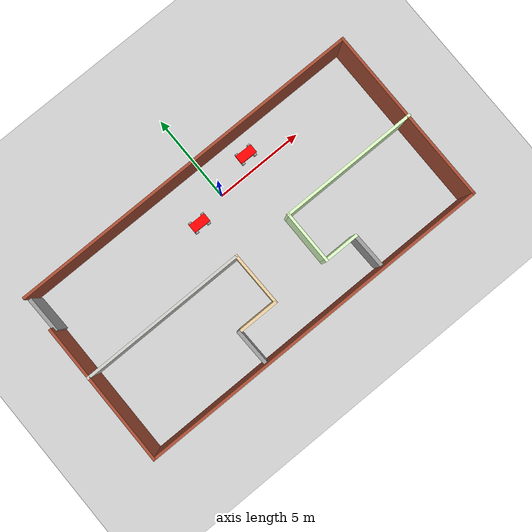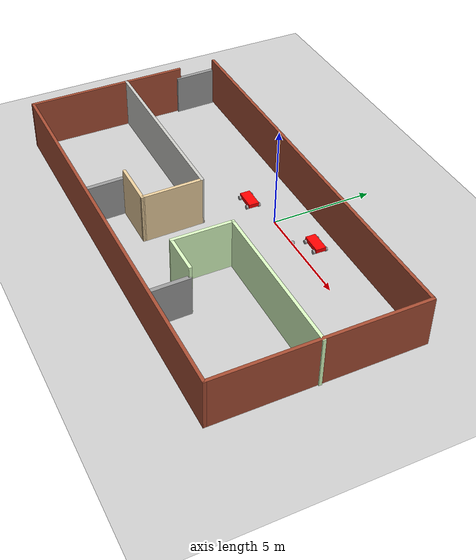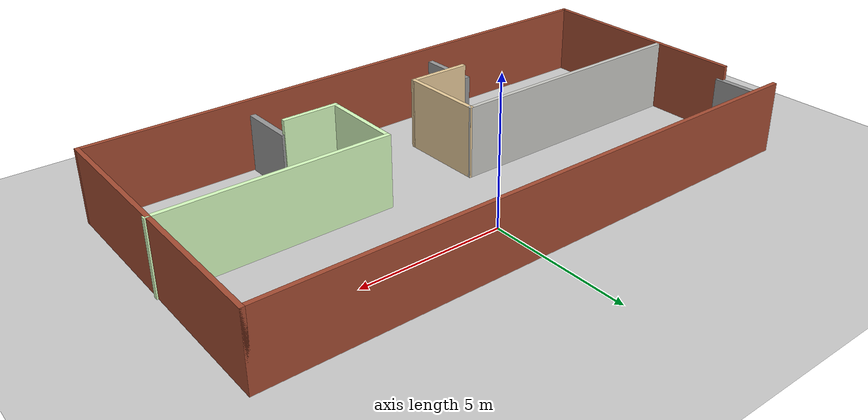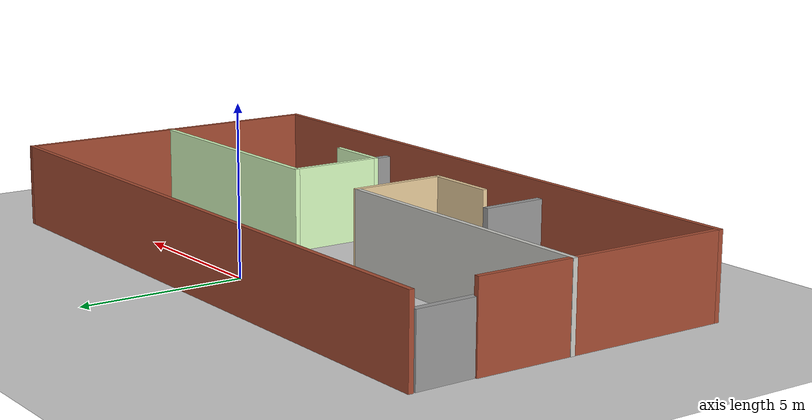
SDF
<sdf version="1.7">
 <world name="default">
  <light name="sun" type="directional">
   <pose>0 0 10 0 -0 0</pose>
   <diffuse>0.8 0.8 0.8 1</diffuse>
   <specular>0.2 0.2 0.2 1</specular>
   <attenuation>
    <range>1000</range>
    <constant>0.9</constant>
    <linear>0.01</linear>
    <quadratic>0.001</quadratic>
   </attenuation>
   <direction>-0.5 0.1 -0.9</direction>
   <spot><inner_angle>0</inner_angle><outer_angle>0</outer_angle><falloff>0</falloff></spot>
  </light>
  <model name="ground_plane">
   <static>1</static>
   <link name="ground_plane::link">
    <collision name="collision">
     <geometry><plane><normal>0 0 1</normal><size>100 100</size></plane></geometry>
     <surface><friction><ode><mu>100</mu><mu2>50</mu2></ode></friction></surface>
    </collision>
    <visual name="visual">
     <cast_shadows>0</cast_shadows>
     <geometry><plane><normal>0 0 1</normal><size>100 100</size></plane></geometry>
     <material>
      <script><uri>file://media/materials/scripts/gazebo.material</uri><name>Gazebo/Grey</name></script>
     </material>
    </visual>
   </link>
  </model>
  <gravity>0 0 -9.8</gravity>
  <magnetic_field>6e-06 2.3e-05 -4.2e-05</magnetic_field>
  <atmosphere type="adiabatic"/>
  <physics name="default_physics" default="0" type="ode">
   <max_step_size>0.001</max_step_size>
   <real_time_factor>1</real_time_factor>
   <real_time_update_rate>1000</real_time_update_rate>
  </physics>
  <scene><ambient>0.4 0.4 0.4 1</ambient><background>0.7 0.7 0.7 1</background><shadows>1</shadows></scene>
  <spherical_coordinates>
   <surface_model>EARTH_WGS84</surface_model>
   <latitude_deg>0</latitude_deg>
   <longitude_deg>0</longitude_deg>
   <elevation>0</elevation>
   <heading_deg>0</heading_deg>
  </spherical_coordinates>
  <model name="robot_space">
   <pose>-0.5915 -3.028 0 0 -0 0</pose>
   <link name="Door_3">
    <collision name="Door_3_Collision">
     <geometry><box><size>2.05653 0.2 2</size></box></geometry>
     <pose>0 0 1 0 -0 0</pose>
    </collision>
    <visual name="Door_3_Visual">
     <pose>0 0 1 0 -0 0</pose>
     <geometry><box><size>2.05653 0.2 2</size></box></geometry>
     <material>
      <script><uri>file://media/materials/scripts/gazebo.material</uri><name>Gazebo/Grey</name></script>
     </material>
    </visual>
    <pose>-3.06434 -3.84105 0 0 0 -1.54642</pose>
   </link>
   <link name="Door_4">
    <collision name="Door_4_Collision">
     <geometry><box><size>2.01581 0.2 2</size></box></geometry>
     <pose>0 0 1 0 -0 0</pose>
    </collision>
    <visual name="Door_4_Visual">
     <pose>0 0 1 0 -0 0</pose>
     <geometry><box><size>2.01581 0.2 2</size></box></geometry>
     <material>
      <script><uri>file://media/materials/scripts/gazebo.material</uri><name>Gazebo/Grey</name></script>
     </material>
    </visual>
    <pose>-9.88584 3.78209 0 0 -0 1.59102</pose>
   </link>
   <link name="Door_5">
    <collision name="Door_5_Collision">
     <geometry><box><size>1.94971 0.2 2</size></box></geometry>
     <pose>0 0 1 0 -0 0</pose>
    </collision>
    <visual name="Door_5_Visual">
     <pose>0 0 1 0 -0 0</pose>
     <geometry><box><size>1.94971 0.2 2</size></box></geometry>
     <material>
      <script><uri>file://media/materials/scripts/gazebo.material</uri><name>Gazebo/Grey</name></script>
     </material>
    </visual>
    <pose>4.28496 -3.82425 0 0 -0 1.59278</pose>
   </link>
   <link name="Wall_11">
    <collision name="Wall_11_Collision">
     <geometry><box><size>20 0.15 2.5</size></box></geometry>
     <pose>0 0 1.25 0 -0 0</pose>
    </collision>
    <visual name="Wall_11_Visual">
     <pose>0 0 1.25 0 -0 0</pose>
     <geometry><box><size>20 0.15 2.5</size></box></geometry>
     <material>
      <script><uri>file://media/materials/scripts/gazebo.material</uri><name>Gazebo/Bricks</name></script>
      <ambient>1 1 1 1</ambient>
     </material>
     <meta><layer>0</layer></meta>
    </visual>
    <pose>-0.022053 4.925 0 0 -0 0</pose>
   </link>
   <link name="Wall_12">
    <collision name="Wall_12_Collision">
     <geometry><box><size>10 0.15 2.5</size></box></geometry>
     <pose>0 0 1.25 0 -0 0</pose>
    </collision>
    <visual name="Wall_12_Visual">
     <pose>0 0 1.25 0 -0 0</pose>
     <geometry><box><size>10 0.15 2.5</size></box></geometry>
     <material>
      <script><uri>file://media/materials/scripts/gazebo.material</uri><name>Gazebo/Bricks</name></script>
      <ambient>1 1 1 1</ambient>
     </material>
     <meta><layer>0</layer></meta>
    </visual>
    <pose>9.90295 0 0 0 0 -1.5708</pose>
   </link>
   <link name="Wall_13">
    <collision name="Wall_13_Collision">
     <geometry><box><size>20 0.15 2.5</size></box></geometry>
     <pose>0 0 1.25 0 -0 0</pose>
    </collision>
    <visual name="Wall_13_Visual">
     <pose>0 0 1.25 0 -0 0</pose>
     <geometry><box><size>20 0.15 2.5</size></box></geometry>
     <material>
      <script><uri>file://media/materials/scripts/gazebo.material</uri><name>Gazebo/Bricks</name></script>
      <ambient>1 1 1 1</ambient>
     </material>
     <meta><layer>0</layer></meta>
    </visual>
    <pose>-0.022053 -4.925 0 0 -0 3.14159</pose>
   </link>
   <link name="Wall_14">
    <collision name="Wall_14_Collision">
     <geometry><box><size>8 0.15 2.5</size></box></geometry>
     <pose>0 0 1.25 0 -0 0</pose>
    </collision>
    <visual name="Wall_14_Visual">
     <pose>0 0 1.25 0 -0 0</pose>
     <geometry><box><size>8 0.15 2.5</size></box></geometry>
     <material>
      <script><uri>file://media/materials/scripts/gazebo.material</uri><name>Gazebo/Bricks</name></script>
      <ambient>1 1 1 1</ambient>
     </material>
     <meta><layer>0</layer></meta>
    </visual>
    <pose>-9.94705 -1 0 0 -0 1.5708</pose>
   </link>
   <link name="Wall_20">
    <collision name="Wall_20_Collision">
     <geometry><box><size>9.25 0.15 2.5</size></box></geometry>
     <pose>0 0 1.25 0 -0 0</pose>
    </collision>
    <visual name="Wall_20_Visual">
     <pose>0 0 1.25 0 -0 0</pose>
     <geometry><box><size>9.25 0.15 2.5</size></box></geometry>
     <material>
      <script><uri>file://media/materials/scripts/gazebo.material</uri><name>Gazebo/CeilingTiled</name></script>
      <ambient>0.921569 0.807843 0.615686 1</ambient>
     </material>
     <meta><layer>0</layer></meta>
    </visual>
    <pose>-5.4065 0.017998 0 0 -0 0</pose>
   </link>
   <link name="Wall_21">
    <collision name="Wall_21_Collision">
     <geometry><box><size>3.04738 0.15 2.5</size></box></geometry>
     <pose>0 0 1.25 0 -0 0</pose>
    </collision>
    <visual name="Wall_21_Visual">
     <pose>0 0 1.25 0 -0 0</pose>
     <geometry><box><size>3.04738 0.15 2.5</size></box></geometry>
     <material>
      <script><uri>file://media/materials/scripts/gazebo.material</uri><name>Gazebo/Grey</name></script>
      <ambient>0.921569 0.807843 0.615686 1</ambient>
     </material>
     <meta><layer>0</layer></meta>
    </visual>
    <pose>-0.833 -1.4305 0 0 0 -1.55457</pose>
   </link>
   <link name="Wall_22">
    <collision name="Wall_22_Collision">
     <geometry><box><size>2.24956 0.15 2.5</size></box></geometry>
     <pose>0 0 1.25 0 -0 0</pose>
    </collision>
    <visual name="Wall_22_Visual">
     <pose>0 0 1.25 0 -0 0</pose>
     <geometry><box><size>2.24956 0.15 2.5</size></box></geometry>
     <material>
      <script><uri>file://media/materials/scripts/gazebo.material</uri><name>Gazebo/Grey</name></script>
      <ambient>0.921569 0.807843 0.615686 1</ambient>
     </material>
     <meta><layer>0</layer></meta>
    </visual>
    <pose>-1.8595 -2.8785 0 0 -0 3.14112</pose>
   </link>
   <link name="Wall_25">
    <collision name="Wall_25_Collision">
     <geometry><box><size>7.75 0.15 2.5</size></box></geometry>
     <pose>0 0 1.25 0 -0 0</pose>
    </collision>
    <visual name="Wall_25_Visual">
     <pose>0 0 1.25 0 -0 0</pose>
     <geometry><box><size>7.75 0.15 2.5</size></box></geometry>
     <material>
      <script><uri>file://media/materials/scripts/gazebo.material</uri><name>Gazebo/Grey</name></script>
      <ambient>0.854902 1 0.760784 1</ambient>
     </material>
     <meta><layer>0</layer></meta>
    </visual>
    <pose>6.1565 -0.028002 0 0 -0 3.14159</pose>
   </link>
   <link name="Wall_26">
    <collision name="Wall_26_Collision">
     <geometry><box><size>3 0.15 2.5</size></box></geometry>
     <pose>0 0 1.25 0 -0 0</pose>
    </collision>
    <visual name="Wall_26_Visual">
     <pose>0 0 1.25 0 -0 0</pose>
     <geometry><box><size>3 0.15 2.5</size></box></geometry>
     <material>
      <script><uri>file://media/materials/scripts/gazebo.material</uri><name>Gazebo/Grey</name></script>
      <ambient>0.854902 1 0.760784 1</ambient>
     </material>
     <meta><layer>0</layer></meta>
    </visual>
    <pose>2.3565 -1.453 0 0 0 -1.5708</pose>
   </link>
   <link name="Wall_27">
    <collision name="Wall_27_Collision">
     <geometry><box><size>2 0.15 2.5</size></box></geometry>
     <pose>0 0 1.25 0 -0 0</pose>
    </collision>
    <visual name="Wall_27_Visual">
     <pose>0 0 1.25 0 -0 0</pose>
     <geometry><box><size>2 0.15 2.5</size></box></geometry>
     <material>
      <script><uri>file://media/materials/scripts/gazebo.material</uri><name>Gazebo/Grey</name></script>
      <ambient>0.854902 1 0.760784 1</ambient>
     </material>
     <meta><layer>0</layer></meta>
    </visual>
    <pose>3.28134 -2.87817 0 0 0 -0.000181</pose>
   </link>
   <static>1</static>
  </model>
  <model name="robot_1">
   <link name="link_0">
    <pose>-3 10 0.2 0 -0 0</pose>
    <inertial>
     <mass>1</mass>
     <inertia>
      <ixx>0.166667</ixx>
      <ixy>0</ixy>
      <ixz>0</ixz>
      <iyy>0.166667</iyy>
      <iyz>0</iyz>
      <izz>0.166667</izz>
     </inertia>
    </inertial>
    <visual name="visual">
     <geometry><box><size>1 0.5 0.2</size></box></geometry>
     <material>
      <lighting>1</lighting>
      <script><uri>file://media/materials/scripts/gazebo.material</uri><name>Gazebo/Grey</name></script>
      <shader type="pixel"><normal_map>__default__</normal_map></shader>
      <ambient>0.5 0.75 0 1</ambient>
      <diffuse>1 0 0 1</diffuse>
      <specular>0.2 0.2 0.2 1</specular>
      <emissive>0.1 0 0.1 1</emissive>
     </material>
    </visual>
    <collision name="collision">
     <geometry><box><size>1 0.5 0.2</size></box></geometry>
     <surface>
      <friction>
       <ode><mu>1</mu><mu2>1</mu2><fdir1>0 0 0</fdir1><slip1>0</slip1><slip2>0</slip2></ode>
       <torsional>
        <coefficient>1</coefficient>
        <patch_radius>0</patch_radius>
        <surface_radius>0</surface_radius>
        <use_patch_radius>1</use_patch_radius>
        <ode><slip>0</slip></ode>
       </torsional>
      </friction>
      <bounce><restitution_coefficient>0</restitution_coefficient><threshold>1e+06</threshold></bounce>
      <contact>
       <collide_without_contact>0</collide_without_contact>
       <collide_without_contact_bitmask>1</collide_without_contact_bitmask>
       <collide_bitmask>1</collide_bitmask>
       <ode>
        <soft_cfm>0</soft_cfm>
        <soft_erp>0.2</soft_erp>
        <kp>1e+13</kp>
        <kd>1</kd>
        <max_vel>0.01</max_vel>
        <min_depth>0</min_depth>
       </ode>
       <bullet>
        <split_impulse>1</split_impulse>
        <split_impulse_penetration_threshold>-0.01</split_impulse_penetration_threshold>
        <soft_cfm>0</soft_cfm>
        <soft_erp>0.2</soft_erp>
        <kp>1e+13</kp>
        <kd>1</kd>
       </bullet>
      </contact>
     </surface>
    </collision>
   </link>
   <link name="link_1">
    <pose>-2.64 9.69998 0.1 1.5707 -0 0</pose>
    <inertial>
     <mass>1</mass>
     <inertia><ixx>0.145833</ixx><ixy>0</ixy><ixz>0</ixz><iyy>0.145833</iyy><iyz>0</iyz><izz>0.125</izz></inertia>
    </inertial>
    <visual name="visual">
     <geometry><cylinder><radius>0.1</radius><length>0.1</length></cylinder></geometry>
     <material>
      <lighting>1</lighting>
      <script><uri>file://media/materials/scripts/gazebo.material</uri><name>Gazebo/Grey</name></script>
      <shader type="pixel"><normal_map>__default__</normal_map></shader>
      <ambient>0.3 0.3 0.3 1</ambient>
      <diffuse>0.7 0.7 0.7 1</diffuse>
      <specular>0.01 0.01 0.01 1</specular>
      <emissive>0 0 0 1</emissive>
     </material>
    </visual>
    <collision name="collision">
     <geometry><cylinder><radius>0.1</radius><length>0.1</length></cylinder></geometry>
     <surface>
      <friction>
       <ode><mu>1</mu><mu2>1</mu2><fdir1>0 0 0</fdir1><slip1>0</slip1><slip2>0</slip2></ode>
       <torsional>
        <coefficient>1</coefficient>
        <patch_radius>0</patch_radius>
        <surface_radius>0</surface_radius>
        <use_patch_radius>1</use_patch_radius>
        <ode><slip>0</slip></ode>
       </torsional>
      </friction>
      <bounce><restitution_coefficient>0</restitution_coefficient><threshold>1e+06</threshold></bounce>
      <contact>
       <collide_without_contact>0</collide_without_contact>
       <collide_without_contact_bitmask>1</collide_without_contact_bitmask>
       <collide_bitmask>1</collide_bitmask>
       <ode>
        <soft_cfm>0</soft_cfm>
        <soft_erp>0.2</soft_erp>
        <kp>1e+13</kp>
        <kd>1</kd>
        <max_vel>0.01</max_vel>
        <min_depth>0</min_depth>
       </ode>
       <bullet>
        <split_impulse>1</split_impulse>
        <split_impulse_penetration_threshold>-0.01</split_impulse_penetration_threshold>
        <soft_cfm>0</soft_cfm>
        <soft_erp>0.2</soft_erp>
        <kp>1e+13</kp>
        <kd>1</kd>
       </bullet>
      </contact>
     </surface>
    </collision>
   </link>
   <link name="link_1_clone">
    <pose>-3.4 9.69999 0.1 1.5707 -0 0</pose>
    <inertial>
     <mass>1</mass>
     <inertia><ixx>0.145833</ixx><ixy>0</ixy><ixz>0</ixz><iyy>0.145833</iyy><iyz>0</iyz><izz>0.125</izz></inertia>
    </inertial>
    <visual name="visual">
     <geometry><cylinder><radius>0.1</radius><length>0.1</length></cylinder></geometry>
     <material>
      <lighting>1</lighting>
      <script><uri>file://media/materials/scripts/gazebo.material</uri><name>Gazebo/Grey</name></script>
      <shader type="pixel"><normal_map>__default__</normal_map></shader>
      <ambient>0.3 0.3 0.3 1</ambient>
      <diffuse>0.7 0.7 0.7 1</diffuse>
      <specular>0.01 0.01 0.01 1</specular>
      <emissive>0 0 0 1</emissive>
     </material>
    </visual>
    <collision name="collision">
     <geometry><cylinder><radius>0.1</radius><length>0.1</length></cylinder></geometry>
     <surface>
      <friction>
       <ode><mu>1</mu><mu2>1</mu2><fdir1>0 0 0</fdir1><slip1>0</slip1><slip2>0</slip2></ode>
       <torsional>
        <coefficient>1</coefficient>
        <patch_radius>0</patch_radius>
        <surface_radius>0</surface_radius>
        <use_patch_radius>1</use_patch_radius>
        <ode><slip>0</slip></ode>
       </torsional>
      </friction>
      <bounce><restitution_coefficient>0</restitution_coefficient><threshold>1e+06</threshold></bounce>
      <contact>
       <collide_without_contact>0</collide_without_contact>
       <collide_without_contact_bitmask>1</collide_without_contact_bitmask>
       <collide_bitmask>1</collide_bitmask>
       <ode>
        <soft_cfm>0</soft_cfm>
        <soft_erp>0.2</soft_erp>
        <kp>1e+13</kp>
        <kd>1</kd>
        <max_vel>0.01</max_vel>
        <min_depth>0</min_depth>
       </ode>
       <bullet>
        <split_impulse>1</split_impulse>
        <split_impulse_penetration_threshold>-0.01</split_impulse_penetration_threshold>
        <soft_cfm>0</soft_cfm>
        <soft_erp>0.2</soft_erp>
        <kp>1e+13</kp>
        <kd>1</kd>
       </bullet>
      </contact>
     </surface>
    </collision>
   </link>
   <link name="link_1_clone_clone">
    <pose>-3.4 10.3 0.1 1.5707 -0 0</pose>
    <inertial>
     <mass>1</mass>
     <inertia><ixx>0.145833</ixx><ixy>0</ixy><ixz>0</ixz><iyy>0.145833</iyy><iyz>0</iyz><izz>0.125</izz></inertia>
    </inertial>
    <visual name="visual">
     <geometry><cylinder><radius>0.1</radius><length>0.1</length></cylinder></geometry>
     <material>
      <lighting>1</lighting>
      <script><uri>file://media/materials/scripts/gazebo.material</uri><name>Gazebo/Grey</name></script>
      <shader type="pixel"><normal_map>__default__</normal_map></shader>
      <ambient>0.3 0.3 0.3 1</ambient>
      <diffuse>0.7 0.7 0.7 1</diffuse>
      <specular>0.01 0.01 0.01 1</specular>
      <emissive>0 0 0 1</emissive>
     </material>
    </visual>
    <collision name="collision">
     <geometry><cylinder><radius>0.1</radius><length>0.1</length></cylinder></geometry>
     <surface>
      <friction>
       <ode><mu>1</mu><mu2>1</mu2><fdir1>0 0 0</fdir1><slip1>0</slip1><slip2>0</slip2></ode>
       <torsional>
        <coefficient>1</coefficient>
        <patch_radius>0</patch_radius>
        <surface_radius>0</surface_radius>
        <use_patch_radius>1</use_patch_radius>
        <ode><slip>0</slip></ode>
       </torsional>
      </friction>
      <bounce><restitution_coefficient>0</restitution_coefficient><threshold>1e+06</threshold></bounce>
      <contact>
       <collide_without_contact>0</collide_without_contact>
       <collide_without_contact_bitmask>1</collide_without_contact_bitmask>
       <collide_bitmask>1</collide_bitmask>
       <ode>
        <soft_cfm>0</soft_cfm>
        <soft_erp>0.2</soft_erp>
        <kp>1e+13</kp>
        <kd>1</kd>
        <max_vel>0.01</max_vel>
        <min_depth>0</min_depth>
       </ode>
       <bullet>
        <split_impulse>1</split_impulse>
        <split_impulse_penetration_threshold>-0.01</split_impulse_penetration_threshold>
        <soft_cfm>0</soft_cfm>
        <soft_erp>0.2</soft_erp>
        <kp>1e+13</kp>
        <kd>1</kd>
       </bullet>
      </contact>
     </surface>
    </collision>
   </link>
   <link name="link_1_clone_clone_clone">
    <pose>-2.6 10.3 0.1 1.5707 -0 0</pose>
    <inertial>
     <mass>1</mass>
     <inertia><ixx>0.145833</ixx><ixy>0</ixy><ixz>0</ixz><iyy>0.145833</iyy><iyz>0</iyz><izz>0.125</izz></inertia>
    </inertial>
    <visual name="visual">
     <geometry><cylinder><radius>0.1</radius><length>0.1</length></cylinder></geometry>
     <material>
      <lighting>1</lighting>
      <script><uri>file://media/materials/scripts/gazebo.material</uri><name>Gazebo/Grey</name></script>
      <shader type="pixel"><normal_map>__default__</normal_map></shader>
      <ambient>0.3 0.3 0.3 1</ambient>
      <diffuse>0.7 0.7 0.7 1</diffuse>
      <specular>0.01 0.01 0.01 1</specular>
      <emissive>0 0 0 1</emissive>
     </material>
    </visual>
    <collision name="collision">
     <geometry><cylinder><radius>0.1</radius><length>0.1</length></cylinder></geometry>
     <surface>
      <friction>
       <ode><mu>1</mu><mu2>1</mu2><fdir1>0 0 0</fdir1><slip1>0</slip1><slip2>0</slip2></ode>
       <torsional>
        <coefficient>1</coefficient>
        <patch_radius>0</patch_radius>
        <surface_radius>0</surface_radius>
        <use_patch_radius>1</use_patch_radius>
        <ode><slip>0</slip></ode>
       </torsional>
      </friction>
      <bounce><restitution_coefficient>0</restitution_coefficient><threshold>1e+06</threshold></bounce>
      <contact>
       <collide_without_contact>0</collide_without_contact>
       <collide_without_contact_bitmask>1</collide_without_contact_bitmask>
       <collide_bitmask>1</collide_bitmask>
       <ode>
        <soft_cfm>0</soft_cfm>
        <soft_erp>0.2</soft_erp>
        <kp>1e+13</kp>
        <kd>1</kd>
        <max_vel>0.01</max_vel>
        <min_depth>0</min_depth>
       </ode>
       <bullet>
        <split_impulse>1</split_impulse>
        <split_impulse_penetration_threshold>-0.01</split_impulse_penetration_threshold>
        <soft_cfm>0</soft_cfm>
        <soft_erp>0.2</soft_erp>
        <kp>1e+13</kp>
        <kd>1</kd>
       </bullet>
      </contact>
     </surface>
    </collision>
   </link>
   <joint name="link_0_JOINT_1" type="revolute">
    <parent>link_0</parent>
    <child>link_1</child>
    <axis>
     <xyz>0 0 1</xyz>
     <limit>
      <lower>-1.79769e+308</lower>
      <upper>1.79769e+308</upper>
      <effort>-1</effort>
      <velocity>-1</velocity>
     </limit>
     <dynamics>
      <spring_reference>0</spring_reference>
      <spring_stiffness>0</spring_stiffness>
      <damping>0</damping>
      <friction>0</friction>
     </dynamics>
    </axis>
    <physics>
     <ode><limit><cfm>0</cfm><erp>0.2</erp></limit><suspension><cfm>0</cfm><erp>0.2</erp></suspension></ode>
    </physics>
   </joint>
   <joint name="link_0_JOINT_3" type="revolute">
    <parent>link_0</parent>
    <child>link_1_clone_clone_clone</child>
    <axis>
     <xyz>0 0 1</xyz>
     <limit>
      <lower>-1.79769e+308</lower>
      <upper>1.79769e+308</upper>
      <effort>-1</effort>
      <velocity>-1</velocity>
     </limit>
     <dynamics>
      <spring_reference>0</spring_reference>
      <spring_stiffness>0</spring_stiffness>
      <damping>0</damping>
      <friction>0</friction>
     </dynamics>
    </axis>
    <physics>
     <ode><limit><cfm>0</cfm><erp>0.2</erp></limit><suspension><cfm>0</cfm><erp>0.2</erp></suspension></ode>
    </physics>
   </joint>
   <joint name="link_0_JOINT_5" type="revolute">
    <parent>link_0</parent>
    <child>link_1_clone_clone</child>
    <axis>
     <xyz>0 0 1</xyz>
     <limit>
      <lower>-1.79769e+308</lower>
      <upper>1.79769e+308</upper>
      <effort>-1</effort>
      <velocity>-1</velocity>
     </limit>
     <dynamics>
      <spring_reference>0</spring_reference>
      <spring_stiffness>0</spring_stiffness>
      <damping>0</damping>
      <friction>0</friction>
     </dynamics>
    </axis>
    <physics>
     <ode><limit><cfm>0</cfm><erp>0.2</erp></limit><suspension><cfm>0</cfm><erp>0.2</erp></suspension></ode>
    </physics>
   </joint>
   <joint name="link_0_JOINT_7" type="revolute">
    <parent>link_0</parent>
    <child>link_1_clone</child>
    <axis>
     <xyz>0 0 1</xyz>
     <limit>
      <lower>-1.79769e+308</lower>
      <upper>1.79769e+308</upper>
      <effort>-1</effort>
      <velocity>-1</velocity>
     </limit>
     <dynamics>
      <spring_reference>0</spring_reference>
      <spring_stiffness>0</spring_stiffness>
      <damping>0</damping>
      <friction>0</friction>
     </dynamics>
    </axis>
    <physics>
     <ode><limit><cfm>0</cfm><erp>0.2</erp></limit><suspension><cfm>0</cfm><erp>0.2</erp></suspension></ode>
    </physics>
   </joint>
   <static>0</static>
   <pose>1.04205 -10.4433 2.1e-05 -2e-06 -0 -0.016861</pose>
  </model>
  <model name="robot_1_0">
   <link name="link_0">
    <pose>-3 10 0.2 0 -0 0</pose>
    <inertial>
     <mass>1</mass>
     <inertia>
      <ixx>0.166667</ixx>
      <ixy>0</ixy>
      <ixz>0</ixz>
      <iyy>0.166667</iyy>
      <iyz>0</iyz>
      <izz>0.166667</izz>
     </inertia>
    </inertial>
    <visual name="visual">
     <geometry><box><size>1 0.5 0.2</size></box></geometry>
     <material>
      <lighting>1</lighting>
      <script><uri>file://media/materials/scripts/gazebo.material</uri><name>Gazebo/Grey</name></script>
      <shader type="pixel"><normal_map>__default__</normal_map></shader>
      <ambient>0.5 0.75 0 1</ambient>
      <diffuse>1 0 0 1</diffuse>
      <specular>0.2 0.2 0.2 1</specular>
      <emissive>0.1 0 0.1 1</emissive>
     </material>
    </visual>
    <collision name="collision">
     <geometry><box><size>1 0.5 0.2</size></box></geometry>
     <surface>
      <friction>
       <ode><mu>1</mu><mu2>1</mu2><fdir1>0 0 0</fdir1><slip1>0</slip1><slip2>0</slip2></ode>
       <torsional>
        <coefficient>1</coefficient>
        <patch_radius>0</patch_radius>
        <surface_radius>0</surface_radius>
        <use_patch_radius>1</use_patch_radius>
        <ode><slip>0</slip></ode>
       </torsional>
      </friction>
      <bounce><restitution_coefficient>0</restitution_coefficient><threshold>1e+06</threshold></bounce>
      <contact>
       <collide_without_contact>0</collide_without_contact>
       <collide_without_contact_bitmask>1</collide_without_contact_bitmask>
       <collide_bitmask>1</collide_bitmask>
       <ode>
        <soft_cfm>0</soft_cfm>
        <soft_erp>0.2</soft_erp>
        <kp>1e+13</kp>
        <kd>1</kd>
        <max_vel>0.01</max_vel>
        <min_depth>0</min_depth>
       </ode>
       <bullet>
        <split_impulse>1</split_impulse>
        <split_impulse_penetration_threshold>-0.01</split_impulse_penetration_threshold>
        <soft_cfm>0</soft_cfm>
        <soft_erp>0.2</soft_erp>
        <kp>1e+13</kp>
        <kd>1</kd>
       </bullet>
      </contact>
     </surface>
    </collision>
   </link>
   <link name="link_1">
    <pose>-2.64 9.69998 0.1 1.5707 -0 0</pose>
    <inertial>
     <mass>1</mass>
     <inertia><ixx>0.145833</ixx><ixy>0</ixy><ixz>0</ixz><iyy>0.145833</iyy><iyz>0</iyz><izz>0.125</izz></inertia>
    </inertial>
    <visual name="visual">
     <geometry><cylinder><radius>0.1</radius><length>0.1</length></cylinder></geometry>
     <material>
      <lighting>1</lighting>
      <script><uri>file://media/materials/scripts/gazebo.material</uri><name>Gazebo/Grey</name></script>
      <shader type="pixel"><normal_map>__default__</normal_map></shader>
      <ambient>0.3 0.3 0.3 1</ambient>
      <diffuse>0.7 0.7 0.7 1</diffuse>
      <specular>0.01 0.01 0.01 1</specular>
      <emissive>0 0 0 1</emissive>
     </material>
    </visual>
    <collision name="collision">
     <geometry><cylinder><radius>0.1</radius><length>0.1</length></cylinder></geometry>
     <surface>
      <friction>
       <ode><mu>1</mu><mu2>1</mu2><fdir1>0 0 0</fdir1><slip1>0</slip1><slip2>0</slip2></ode>
       <torsional>
        <coefficient>1</coefficient>
        <patch_radius>0</patch_radius>
        <surface_radius>0</surface_radius>
        <use_patch_radius>1</use_patch_radius>
        <ode><slip>0</slip></ode>
       </torsional>
      </friction>
      <bounce><restitution_coefficient>0</restitution_coefficient><threshold>1e+06</threshold></bounce>
      <contact>
       <collide_without_contact>0</collide_without_contact>
       <collide_without_contact_bitmask>1</collide_without_contact_bitmask>
       <collide_bitmask>1</collide_bitmask>
       <ode>
        <soft_cfm>0</soft_cfm>
        <soft_erp>0.2</soft_erp>
        <kp>1e+13</kp>
        <kd>1</kd>
        <max_vel>0.01</max_vel>
        <min_depth>0</min_depth>
       </ode>
       <bullet>
        <split_impulse>1</split_impulse>
        <split_impulse_penetration_threshold>-0.01</split_impulse_penetration_threshold>
        <soft_cfm>0</soft_cfm>
        <soft_erp>0.2</soft_erp>
        <kp>1e+13</kp>
        <kd>1</kd>
       </bullet>
      </contact>
     </surface>
    </collision>
   </link>
   <link name="link_1_clone">
    <pose>-3.4 9.69999 0.1 1.5707 -0 0</pose>
    <inertial>
     <mass>1</mass>
     <inertia><ixx>0.145833</ixx><ixy>0</ixy><ixz>0</ixz><iyy>0.145833</iyy><iyz>0</iyz><izz>0.125</izz></inertia>
    </inertial>
    <visual name="visual">
     <geometry><cylinder><radius>0.1</radius><length>0.1</length></cylinder></geometry>
     <material>
      <lighting>1</lighting>
      <script><uri>file://media/materials/scripts/gazebo.material</uri><name>Gazebo/Grey</name></script>
      <shader type="pixel"><normal_map>__default__</normal_map></shader>
      <ambient>0.3 0.3 0.3 1</ambient>
      <diffuse>0.7 0.7 0.7 1</diffuse>
      <specular>0.01 0.01 0.01 1</specular>
      <emissive>0 0 0 1</emissive>
     </material>
    </visual>
    <collision name="collision">
     <geometry><cylinder><radius>0.1</radius><length>0.1</length></cylinder></geometry>
     <surface>
      <friction>
       <ode><mu>1</mu><mu2>1</mu2><fdir1>0 0 0</fdir1><slip1>0</slip1><slip2>0</slip2></ode>
       <torsional>
        <coefficient>1</coefficient>
        <patch_radius>0</patch_radius>
        <surface_radius>0</surface_radius>
        <use_patch_radius>1</use_patch_radius>
        <ode><slip>0</slip></ode>
       </torsional>
      </friction>
      <bounce><restitution_coefficient>0</restitution_coefficient><threshold>1e+06</threshold></bounce>
      <contact>
       <collide_without_contact>0</collide_without_contact>
       <collide_without_contact_bitmask>1</collide_without_contact_bitmask>
       <collide_bitmask>1</collide_bitmask>
       <ode>
        <soft_cfm>0</soft_cfm>
        <soft_erp>0.2</soft_erp>
        <kp>1e+13</kp>
        <kd>1</kd>
        <max_vel>0.01</max_vel>
        <min_depth>0</min_depth>
       </ode>
       <bullet>
        <split_impulse>1</split_impulse>
        <split_impulse_penetration_threshold>-0.01</split_impulse_penetration_threshold>
        <soft_cfm>0</soft_cfm>
        <soft_erp>0.2</soft_erp>
        <kp>1e+13</kp>
        <kd>1</kd>
       </bullet>
      </contact>
     </surface>
    </collision>
   </link>
   <link name="link_1_clone_clone">
    <pose>-3.4 10.3 0.1 1.5707 -0 0</pose>
    <inertial>
     <mass>1</mass>
     <inertia><ixx>0.145833</ixx><ixy>0</ixy><ixz>0</ixz><iyy>0.145833</iyy><iyz>0</iyz><izz>0.125</izz></inertia>
    </inertial>
    <visual name="visual">
     <geometry><cylinder><radius>0.1</radius><length>0.1</length></cylinder></geometry>
     <material>
      <lighting>1</lighting>
      <script><uri>file://media/materials/scripts/gazebo.material</uri><name>Gazebo/Grey</name></script>
      <shader type="pixel"><normal_map>__default__</normal_map></shader>
      <ambient>0.3 0.3 0.3 1</ambient>
      <diffuse>0.7 0.7 0.7 1</diffuse>
      <specular>0.01 0.01 0.01 1</specular>
      <emissive>0 0 0 1</emissive>
     </material>
    </visual>
    <collision name="collision">
     <geometry><cylinder><radius>0.1</radius><length>0.1</length></cylinder></geometry>
     <surface>
      <friction>
       <ode><mu>1</mu><mu2>1</mu2><fdir1>0 0 0</fdir1><slip1>0</slip1><slip2>0</slip2></ode>
       <torsional>
        <coefficient>1</coefficient>
        <patch_radius>0</patch_radius>
        <surface_radius>0</surface_radius>
        <use_patch_radius>1</use_patch_radius>
        <ode><slip>0</slip></ode>
       </torsional>
      </friction>
      <bounce><restitution_coefficient>0</restitution_coefficient><threshold>1e+06</threshold></bounce>
      <contact>
       <collide_without_contact>0</collide_without_contact>
       <collide_without_contact_bitmask>1</collide_without_contact_bitmask>
       <collide_bitmask>1</collide_bitmask>
       <ode>
        <soft_cfm>0</soft_cfm>
        <soft_erp>0.2</soft_erp>
        <kp>1e+13</kp>
        <kd>1</kd>
        <max_vel>0.01</max_vel>
        <min_depth>0</min_depth>
       </ode>
       <bullet>
        <split_impulse>1</split_impulse>
        <split_impulse_penetration_threshold>-0.01</split_impulse_penetration_threshold>
        <soft_cfm>0</soft_cfm>
        <soft_erp>0.2</soft_erp>
        <kp>1e+13</kp>
        <kd>1</kd>
       </bullet>
      </contact>
     </surface>
    </collision>
   </link>
   <link name="link_1_clone_clone_clone">
    <pose>-2.6 10.3 0.1 1.5707 -0 0</pose>
    <inertial>
     <mass>1</mass>
     <inertia><ixx>0.145833</ixx><ixy>0</ixy><ixz>0</ixz><iyy>0.145833</iyy><iyz>0</iyz><izz>0.125</izz></inertia>
    </inertial>
    <visual name="visual">
     <geometry><cylinder><radius>0.1</radius><length>0.1</length></cylinder></geometry>
     <material>
      <lighting>1</lighting>
      <script><uri>file://media/materials/scripts/gazebo.material</uri><name>Gazebo/Grey</name></script>
      <shader type="pixel"><normal_map>__default__</normal_map></shader>
      <ambient>0.3 0.3 0.3 1</ambient>
      <diffuse>0.7 0.7 0.7 1</diffuse>
      <specular>0.01 0.01 0.01 1</specular>
      <emissive>0 0 0 1</emissive>
     </material>
    </visual>
    <collision name="collision">
     <geometry><cylinder><radius>0.1</radius><length>0.1</length></cylinder></geometry>
     <surface>
      <friction>
       <ode><mu>1</mu><mu2>1</mu2><fdir1>0 0 0</fdir1><slip1>0</slip1><slip2>0</slip2></ode>
       <torsional>
        <coefficient>1</coefficient>
        <patch_radius>0</patch_radius>
        <surface_radius>0</surface_radius>
        <use_patch_radius>1</use_patch_radius>
        <ode><slip>0</slip></ode>
       </torsional>
      </friction>
      <bounce><restitution_coefficient>0</restitution_coefficient><threshold>1e+06</threshold></bounce>
      <contact>
       <collide_without_contact>0</collide_without_contact>
       <collide_without_contact_bitmask>1</collide_without_contact_bitmask>
       <collide_bitmask>1</collide_bitmask>
       <ode>
        <soft_cfm>0</soft_cfm>
        <soft_erp>0.2</soft_erp>
        <kp>1e+13</kp>
        <kd>1</kd>
        <max_vel>0.01</max_vel>
        <min_depth>0</min_depth>
       </ode>
       <bullet>
        <split_impulse>1</split_impulse>
        <split_impulse_penetration_threshold>-0.01</split_impulse_penetration_threshold>
        <soft_cfm>0</soft_cfm>
        <soft_erp>0.2</soft_erp>
        <kp>1e+13</kp>
        <kd>1</kd>
       </bullet>
      </contact>
     </surface>
    </collision>
   </link>
   <joint name="link_0_JOINT_1" type="revolute">
    <parent>link_0</parent>
    <child>link_1</child>
    <axis>
     <xyz>0 0 1</xyz>
     <limit>
      <lower>-1.79769e+308</lower>
      <upper>1.79769e+308</upper>
      <effort>-1</effort>
      <velocity>-1</velocity>
     </limit>
     <dynamics>
      <spring_reference>0</spring_reference>
      <spring_stiffness>0</spring_stiffness>
      <damping>0</damping>
      <friction>0</friction>
     </dynamics>
    </axis>
    <physics>
     <ode><limit><cfm>0</cfm><erp>0.2</erp></limit><suspension><cfm>0</cfm><erp>0.2</erp></suspension></ode>
    </physics>
   </joint>
   <joint name="link_0_JOINT_3" type="revolute">
    <parent>link_0</parent>
    <child>link_1_clone_clone_clone</child>
    <axis>
     <xyz>0 0 1</xyz>
     <limit>
      <lower>-1.79769e+308</lower>
      <upper>1.79769e+308</upper>
      <effort>-1</effort>
      <velocity>-1</velocity>
     </limit>
     <dynamics>
      <spring_reference>0</spring_reference>
      <spring_stiffness>0</spring_stiffness>
      <damping>0</damping>
      <friction>0</friction>
     </dynamics>
    </axis>
    <physics>
     <ode><limit><cfm>0</cfm><erp>0.2</erp></limit><suspension><cfm>0</cfm><erp>0.2</erp></suspension></ode>
    </physics>
   </joint>
   <joint name="link_0_JOINT_5" type="revolute">
    <parent>link_0</parent>
    <child>link_1_clone_clone</child>
    <axis>
     <xyz>0 0 1</xyz>
     <limit>
      <lower>-1.79769e+308</lower>
      <upper>1.79769e+308</upper>
      <effort>-1</effort>
      <velocity>-1</velocity>
     </limit>
     <dynamics>
      <spring_reference>0</spring_reference>
      <spring_stiffness>0</spring_stiffness>
      <damping>0</damping>
      <friction>0</friction>
     </dynamics>
    </axis>
    <physics>
     <ode><limit><cfm>0</cfm><erp>0.2</erp></limit><suspension><cfm>0</cfm><erp>0.2</erp></suspension></ode>
    </physics>
   </joint>
   <joint name="link_0_JOINT_7" type="revolute">
    <parent>link_0</parent>
    <child>link_1_clone</child>
    <axis>
     <xyz>0 0 1</xyz>
     <limit>
      <lower>-1.79769e+308</lower>
      <upper>1.79769e+308</upper>
      <effort>-1</effort>
      <velocity>-1</velocity>
     </limit>
     <dynamics>
      <spring_reference>0</spring_reference>
      <spring_stiffness>0</spring_stiffness>
      <damping>0</damping>
      <friction>0</friction>
     </dynamics>
    </axis>
    <physics>
     <ode><limit><cfm>0</cfm><erp>0.2</erp></limit><suspension><cfm>0</cfm><erp>0.2</erp></suspension></ode>
    </physics>
   </joint>
   <static>0</static>
   <pose>5.14628 -9.2098 -4.9e-05 4e-06 3e-06 -0.016183</pose>
  </model>
  <model name="my_ball">
   <link name="link_0">
    <inertial>
     <mass>1</mass>
     <inertia><ixx>0.1</ixx><ixy>0</ixy><ixz>0</ixz><iyy>0.1</iyy><iyz>0</iyz><izz>0.1</izz></inertia>
    </inertial>
    <visual name="visual">
     <geometry><sphere><radius>0.1</radius></sphere></geometry>
     <material>
      <lighting>1</lighting>
      <script><uri>file://media/materials/scripts/gazebo.material</uri><name>Gazebo/Grey</name></script>
      <shader type="pixel"><normal_map>__default__</normal_map></shader>
      <ambient>1 1 1 1</ambient>
      <diffuse>1 1 1 1</diffuse>
      <specular>1 1 1 1</specular>
      <emissive>1 1 1 1</emissive>
     </material>
    </visual>
    <collision name="collision">
     <geometry><sphere><radius>0.1</radius></sphere></geometry>
     <surface>
      <friction>
       <ode><mu>1</mu><mu2>1</mu2><fdir1>0 0 0</fdir1><slip1>0</slip1><slip2>0</slip2></ode>
       <torsional>
        <coefficient>1</coefficient>
        <patch_radius>0</patch_radius>
        <surface_radius>0</surface_radius>
        <use_patch_radius>1</use_patch_radius>
        <ode><slip>0</slip></ode>
       </torsional>
      </friction>
      <bounce><restitution_coefficient>0</restitution_coefficient><threshold>1e+06</threshold></bounce>
      <contact>
       <collide_without_contact>0</collide_without_contact>
       <collide_without_contact_bitmask>1</collide_without_contact_bitmask>
       <collide_bitmask>1</collide_bitmask>
       <ode>
        <soft_cfm>0</soft_cfm>
        <soft_erp>0.2</soft_erp>
        <kp>1e+13</kp>
        <kd>1</kd>
        <max_vel>0.01</max_vel>
        <min_depth>0</min_depth>
       </ode>
       <bullet>
        <split_impulse>1</split_impulse>
        <split_impulse_penetration_threshold>-0.01</split_impulse_penetration_threshold>
        <soft_cfm>0</soft_cfm>
        <soft_erp>0.2</soft_erp>
        <kp>1e+13</kp>
        <kd>1</kd>
       </bullet>
      </contact>
     </surface>
    </collision>
   </link>
   <static>0</static>
   <pose>1.71215 -0.008283 0.1 0 -0 0</pose>
  </model>
 </world>
</sdf>
